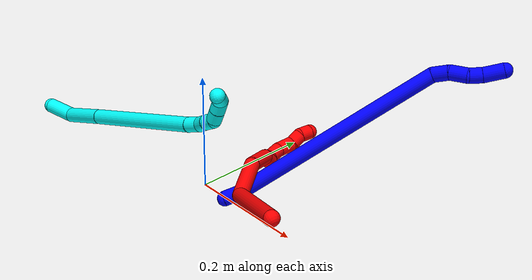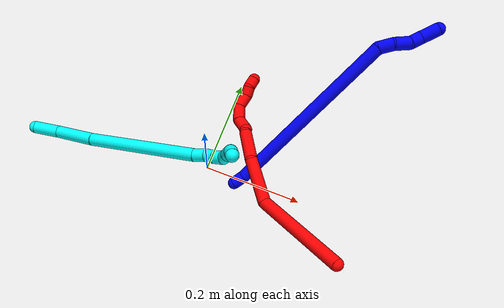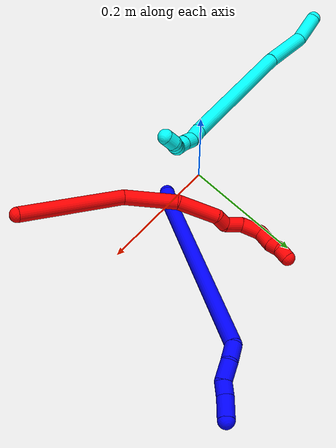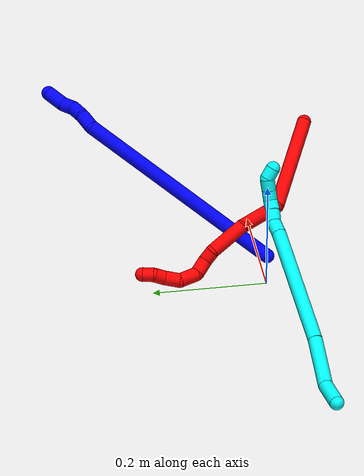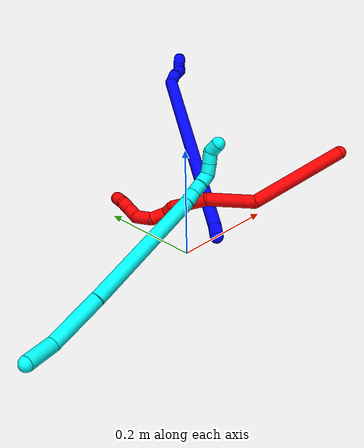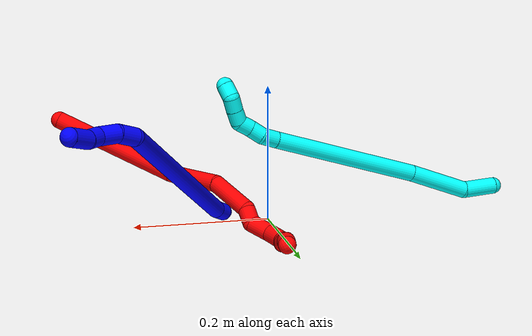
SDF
<sdf version="1.7">
 <world name="default">
  <plugin name="TubeGeneratorPlugin" filename="libtube_generator_plugin.so"/>
  <model name="photoneo_s_sensor">
   <static>1</static>
   <pose>0 0 2 1.57079 1.57079 3.14159</pose>
   <link name="link">
    <inertial><mass>0.1</mass></inertial>
    <sensor name="sensor" type="depth">
     <update_rate>30</update_rate>
     <camera>
      <horizontal_fov>1.22</horizontal_fov>
      <image><width>1920</width><height>1200</height><format>B8G8R8</format></image>
      <clip><near>0.1</near><far>4</far></clip>
      <depth_camera><output>points</output></depth_camera>
     </camera>
     <plugin name="camera_plugin" filename="libgazebo_ros_depth_camera.so">
      <baseline>0.2</baseline>
      <alwaysOn>1</alwaysOn>
      <updateRate>0.0</updateRate>
      <cameraName>camera_ir</cameraName>
      <imageTopicName>/camera/color/image_raw</imageTopicName>
      <cameraInfoTopicName>/camera/color/camera_info</cameraInfoTopicName>
      <depthImageTopicName>/camera/depth/image_raw</depthImageTopicName>
      <depthImageCameraInfoTopicName>/camera/depth/camera_info</depthImageCameraInfoTopicName>
      <pointCloudTopicName>/camera/depth/points</pointCloudTopicName>
      <frameName>fr_optical</frameName>
      <pointCloudCutoff>0.1</pointCloudCutoff>
      <pointCloudCutoffMax>2.0</pointCloudCutoffMax>
      <distortionK1>0</distortionK1>
      <distortionK2>0</distortionK2>
      <distortionK3>0</distortionK3>
      <distortionT1>0</distortionT1>
      <distortionT2>0</distortionT2>
      <CxPrime>0</CxPrime>
      <Cx>0</Cx>
      <Cy>0</Cy>
      <focalLength>0</focalLength>
      <hackBaseline>0</hackBaseline>
     </plugin>
    </sensor>
   </link>
  </model>
  <gravity>0 0 -9.8</gravity>
  <magnetic_field>6e-06 2.3e-05 -4.2e-05</magnetic_field>
  <atmosphere type="adiabatic"/>
  <physics name="default_physics" default="0" type="ode">
   <max_step_size>0.003</max_step_size>
   <real_time_factor>1</real_time_factor>
   <real_time_update_rate>1000</real_time_update_rate>
   <max_contacts>10000</max_contacts>
   <ode>
    <solver>
     <type>quick</type>
     <iters>100</iters>
     <sor>1.3</sor>
     <use_dynamic_moi_rescaling>0</use_dynamic_moi_rescaling>
    </solver>
    <constraints>
     <contact_max_correcting_vel>0</contact_max_correcting_vel>
     <contact_surface_layer>0.001</contact_surface_layer>
     <cfm>0</cfm>
     <erp>0.2</erp>
    </constraints>
   </ode>
  </physics>
  <scene><ambient>0.4 0.4 0.4 1</ambient><background>0.7 0.7 0.7 1</background><shadows>0</shadows></scene>
  <audio><device>default</device></audio>
  <spherical_coordinates>
   <surface_model>EARTH_WGS84</surface_model>
   <latitude_deg>0</latitude_deg>
   <longitude_deg>0</longitude_deg>
   <elevation>0</elevation>
   <heading_deg>0</heading_deg>
  </spherical_coordinates>
  <model name="bin">
   <static>1</static>
   <link name="bottom">
    <collision name="collision-bottom">
     <pose>0 0 -0.01 0 -0 0</pose>
     <geometry><box><size>0.8 0.6 0.02</size></box></geometry>
     <surface>
      <friction><ode><mu>100</mu><mu2>100</mu2></ode></friction>
      <contact><collide_bitmask>65535</collide_bitmask></contact>
     </surface>
    </collision>
   </link>
   <link name="west_wall">
    <collision name="collision-west_wall">
     <pose>-0.41 0 0.1 0 -0 0</pose>
     <geometry><box><size>0.02 0.6 0.2</size></box></geometry>
     <surface>
      <friction><ode><mu>100</mu><mu2>100</mu2></ode></friction>
      <contact><collide_bitmask>65535</collide_bitmask></contact>
     </surface>
    </collision>
   </link>
   <link name="east_wall">
    <collision name="collision-east_wall">
     <pose>0.41 0 0.1 0 -0 0</pose>
     <geometry><box><size>0.02 0.6 0.2</size></box></geometry>
     <surface>
      <friction><ode><mu>100</mu><mu2>100</mu2></ode></friction>
      <contact><collide_bitmask>65535</collide_bitmask></contact>
     </surface>
    </collision>
   </link>
   <link name="south_wall">
    <collision name="collision-south_wall">
     <pose>0 -0.31 0.1 0 -0 0</pose>
     <geometry><box><size>0.8 0.02 0.2</size></box></geometry>
     <surface>
      <friction><ode><mu>100</mu><mu2>100</mu2></ode></friction>
      <contact><collide_bitmask>65535</collide_bitmask></contact>
     </surface>
    </collision>
   </link>
   <link name="north_wall">
    <collision name="collision-north_wall">
     <pose>0 0.31 0.1 0 -0 0</pose>
     <geometry><box><size>0.8 0.02 0.2</size></box></geometry>
     <surface>
      <friction><ode><mu>100</mu><mu2>100</mu2></ode></friction>
      <contact><collide_bitmask>65535</collide_bitmask></contact>
     </surface>
    </collision>
   </link>
  </model>
  <model name="1">
   <static>0</static>
   <link name="1">
    <collision name="collision-cylinder-e_1_1_4">
     <pose>0.002913 0.00265 0.011387 -0.228693 0.244198 -0.028184</pose>
     <geometry><cylinder><radius>0.0125</radius><length>0.024097</length></cylinder></geometry>
     <surface>
      <friction><ode><mu>1.16</mu><mu2>1.16</mu2><slip1>0</slip1><slip2>0</slip2></ode></friction>
      <contact><ode><kp>1e+06</kp><kd>1</kd><max_vel>0</max_vel><min_depth>0.001</min_depth></ode></contact>
     </surface>
    </collision>
    <visual name="visual-cylinder-e_1_1_4">
     <pose>0.002913 0.00265 0.011387 -0.228693 0.244198 -0.028184</pose>
     <geometry><cylinder><radius>0.0125</radius><length>0.024097</length></cylinder></geometry>
     <material><ambient>0 0 1 1</ambient></material>
    </visual>
    <collision name="collision-cylinder-e_2_4_5">
     <pose>0.017857 0.039574 0.199396 -0.191664 0.066767 -0.00642</pose>
     <geometry><cylinder><radius>0.0125</radius><length>0.360639</length></cylinder></geometry>
     <surface>
      <friction><ode><mu>1.16</mu><mu2>1.16</mu2><slip1>0</slip1><slip2>0</slip2></ode></friction>
      <contact><ode><kp>1e+06</kp><kd>1</kd><max_vel>0</max_vel><min_depth>0.001</min_depth></ode></contact>
     </surface>
    </collision>
    <visual name="visual-cylinder-e_2_4_5">
     <pose>0.017857 0.039574 0.199396 -0.191664 0.066767 -0.00642</pose>
     <geometry><cylinder><radius>0.0125</radius><length>0.360639</length></cylinder></geometry>
     <material><ambient>0 0 1 1</ambient></material>
    </visual>
    <collision name="collision-cylinder-e_3_5_6">
     <pose>0.037744 0.074243 0.387864 -0.033464 0.585432 -0.010086</pose>
     <geometry><cylinder><radius>0.0125</radius><length>0.028437</length></cylinder></geometry>
     <surface>
      <friction><ode><mu>1.16</mu><mu2>1.16</mu2><slip1>0</slip1><slip2>0</slip2></ode></friction>
      <contact><ode><kp>1e+06</kp><kd>1</kd><max_vel>0</max_vel><min_depth>0.001</min_depth></ode></contact>
     </surface>
    </collision>
    <visual name="visual-cylinder-e_3_5_6">
     <pose>0.037744 0.074243 0.387864 -0.033464 0.585432 -0.010086</pose>
     <geometry><cylinder><radius>0.0125</radius><length>0.028437</length></cylinder></geometry>
     <material><ambient>0 0 1 1</ambient></material>
    </visual>
    <collision name="collision-cylinder-e_4_6_7">
     <pose>0.056567 0.077507 0.409237 -0.292281 0.833918 -0.130205</pose>
     <geometry><cylinder><radius>0.0125</radius><length>0.029617</length></cylinder></geometry>
     <surface>
      <friction><ode><mu>1.16</mu><mu2>1.16</mu2><slip1>0</slip1><slip2>0</slip2></ode></friction>
      <contact><ode><kp>1e+06</kp><kd>1</kd><max_vel>0</max_vel><min_depth>0.001</min_depth></ode></contact>
     </surface>
    </collision>
    <visual name="visual-cylinder-e_4_6_7">
     <pose>0.056567 0.077507 0.409237 -0.292281 0.833918 -0.130205</pose>
     <geometry><cylinder><radius>0.0125</radius><length>0.029617</length></cylinder></geometry>
     <material><ambient>0 0 1 1</ambient></material>
    </visual>
    <collision name="collision-cylinder-e_5_7_8">
     <pose>0.072526 0.085517 0.427168 -0.549235 0.469076 -0.13443</pose>
     <geometry><cylinder><radius>0.0125</radius><length>0.022088</length></cylinder></geometry>
     <surface>
      <friction><ode><mu>1.16</mu><mu2>1.16</mu2><slip1>0</slip1><slip2>0</slip2></ode></friction>
      <contact><ode><kp>1e+06</kp><kd>1</kd><max_vel>0</max_vel><min_depth>0.001</min_depth></ode></contact>
     </surface>
    </collision>
    <visual name="visual-cylinder-e_5_7_8">
     <pose>0.072526 0.085517 0.427168 -0.549235 0.469076 -0.13443</pose>
     <geometry><cylinder><radius>0.0125</radius><length>0.022088</length></cylinder></geometry>
     <material><ambient>0 0 1 1</ambient></material>
    </visual>
    <collision name="collision-cylinder-e_6_8_2">
     <pose>0.084695 0.094614 0.451102 -0.249323 0.420971 -0.053533</pose>
     <geometry><cylinder><radius>0.0125</radius><length>0.035122</length></cylinder></geometry>
     <surface>
      <friction><ode><mu>1.16</mu><mu2>1.16</mu2><slip1>0</slip1><slip2>0</slip2></ode></friction>
      <contact><ode><kp>1e+06</kp><kd>1</kd><max_vel>0</max_vel><min_depth>0.001</min_depth></ode></contact>
     </surface>
    </collision>
    <visual name="visual-cylinder-e_6_8_2">
     <pose>0.084695 0.094614 0.451102 -0.249323 0.420971 -0.053533</pose>
     <geometry><cylinder><radius>0.0125</radius><length>0.035122</length></cylinder></geometry>
     <material><ambient>0 0 1 1</ambient></material>
    </visual>
    <collision name="collision-sphere-2">
     <pose>0.091871 0.098569 0.466635 0 -0 0</pose>
     <geometry><sphere><radius>0.0125</radius></sphere></geometry>
     <surface>
      <friction><ode><mu>1.16</mu><mu2>1.16</mu2><slip1>0</slip1><slip2>0</slip2></ode></friction>
      <contact><ode><kp>1e+06</kp><kd>1</kd><max_vel>0</max_vel><min_depth>0.001</min_depth></ode></contact>
     </surface>
    </collision>
    <visual name="visual-sphere-2">
     <pose>0.091871 0.098569 0.466635 0 -0 0</pose>
     <geometry><sphere><radius>0.0125</radius></sphere></geometry>
     <material><ambient>0 0 1 1</ambient></material>
    </visual>
    <collision name="collision-sphere-4">
     <pose>0.005826 0.005301 0.022773 0 -0 0</pose>
     <geometry><sphere><radius>0.0125</radius></sphere></geometry>
     <surface>
      <friction><ode><mu>1.16</mu><mu2>1.16</mu2><slip1>0</slip1><slip2>0</slip2></ode></friction>
      <contact><ode><kp>1e+06</kp><kd>1</kd><max_vel>0</max_vel><min_depth>0.001</min_depth></ode></contact>
     </surface>
    </collision>
    <visual name="visual-sphere-4">
     <pose>0.005826 0.005301 0.022773 0 -0 0</pose>
     <geometry><sphere><radius>0.0125</radius></sphere></geometry>
     <material><ambient>0 0 1 1</ambient></material>
    </visual>
    <collision name="collision-sphere-1">
     <geometry><sphere><radius>0.0125</radius></sphere></geometry>
     <surface>
      <friction><ode><mu>1.16</mu><mu2>1.16</mu2><slip1>0</slip1><slip2>0</slip2></ode></friction>
      <contact><ode><kp>1e+06</kp><kd>1</kd><max_vel>0</max_vel><min_depth>0.001</min_depth></ode></contact>
     </surface>
    </collision>
    <visual name="visual-sphere-1">
     <geometry><sphere><radius>0.0125</radius></sphere></geometry>
     <material><ambient>0 0 1 1</ambient></material>
    </visual>
    <collision name="collision-sphere-8">
     <pose>0.077519 0.090659 0.43557 0 -0 0</pose>
     <geometry><sphere><radius>0.0125</radius></sphere></geometry>
     <surface>
      <friction><ode><mu>1.16</mu><mu2>1.16</mu2><slip1>0</slip1><slip2>0</slip2></ode></friction>
      <contact><ode><kp>1e+06</kp><kd>1</kd><max_vel>0</max_vel><min_depth>0.001</min_depth></ode></contact>
     </surface>
    </collision>
    <visual name="visual-sphere-8">
     <pose>0.077519 0.090659 0.43557 0 -0 0</pose>
     <geometry><sphere><radius>0.0125</radius></sphere></geometry>
     <material><ambient>0 0 1 1</ambient></material>
    </visual>
    <collision name="collision-sphere-5">
     <pose>0.029887 0.073847 0.37602 0 -0 0</pose>
     <geometry><sphere><radius>0.0125</radius></sphere></geometry>
     <surface>
      <friction><ode><mu>1.16</mu><mu2>1.16</mu2><slip1>0</slip1><slip2>0</slip2></ode></friction>
      <contact><ode><kp>1e+06</kp><kd>1</kd><max_vel>0</max_vel><min_depth>0.001</min_depth></ode></contact>
     </surface>
    </collision>
    <visual name="visual-sphere-5">
     <pose>0.029887 0.073847 0.37602 0 -0 0</pose>
     <geometry><sphere><radius>0.0125</radius></sphere></geometry>
     <material><ambient>0 0 1 1</ambient></material>
    </visual>
    <collision name="collision-sphere-6">
     <pose>0.0456 0.07464 0.399708 0 -0 0</pose>
     <geometry><sphere><radius>0.0125</radius></sphere></geometry>
     <surface>
      <friction><ode><mu>1.16</mu><mu2>1.16</mu2><slip1>0</slip1><slip2>0</slip2></ode></friction>
      <contact><ode><kp>1e+06</kp><kd>1</kd><max_vel>0</max_vel><min_depth>0.001</min_depth></ode></contact>
     </surface>
    </collision>
    <visual name="visual-sphere-6">
     <pose>0.0456 0.07464 0.399708 0 -0 0</pose>
     <geometry><sphere><radius>0.0125</radius></sphere></geometry>
     <material><ambient>0 0 1 1</ambient></material>
    </visual>
    <collision name="collision-sphere-7">
     <pose>0.067534 0.080374 0.418766 0 -0 0</pose>
     <geometry><sphere><radius>0.0125</radius></sphere></geometry>
     <surface>
      <friction><ode><mu>1.16</mu><mu2>1.16</mu2><slip1>0</slip1><slip2>0</slip2></ode></friction>
      <contact><ode><kp>1e+06</kp><kd>1</kd><max_vel>0</max_vel><min_depth>0.001</min_depth></ode></contact>
     </surface>
    </collision>
    <visual name="visual-sphere-7">
     <pose>0.067534 0.080374 0.418766 0 -0 0</pose>
     <geometry><sphere><radius>0.0125</radius></sphere></geometry>
     <material><ambient>0 0 1 1</ambient></material>
    </visual>
    <inertial>
     <pose>0.027671 0.047909 0.241227 0 -0 0</pose>
     <mass>0.5</mass>
     <inertia>
      <ixx>0.003908</ixx>
      <ixy>0</ixy>
      <ixz>0</ixz>
      <iyy>0.003848</iyy>
      <iyz>0</iyz>
      <izz>-0.000981</izz>
     </inertia>
    </inertial>
   </link>
   <pose>0.064957 -0.013134 0.011497 -0.768861 0.396429 -0.190919</pose>
  </model>
  <model name="2">
   <static>0</static>
   <link name="2">
    <collision name="collision-cylinder-e_1_1_4">
     <pose>-0.019199 0.071219 -0.056441 -2.24095 -0.208215 0.425701</pose>
     <geometry><cylinder><radius>0.0125</radius><length>0.185756</length></cylinder></geometry>
     <surface>
      <friction><ode><mu>1.16</mu><mu2>1.16</mu2><slip1>0</slip1><slip2>0</slip2></ode></friction>
      <contact><ode><kp>1e+06</kp><kd>1</kd><max_vel>0</max_vel><min_depth>0.001</min_depth></ode></contact>
     </surface>
    </collision>
    <visual name="visual-cylinder-e_1_1_4">
     <pose>-0.019199 0.071219 -0.056441 -2.24095 -0.208215 0.425701</pose>
     <geometry><cylinder><radius>0.0125</radius><length>0.185756</length></cylinder></geometry>
     <material><ambient>1 0 0 1</ambient></material>
    </visual>
    <collision name="collision-cylinder-e_2_4_5">
     <pose>-0.067621 0.158936 -0.14266 -2.63564 -0.709355 1.92275</pose>
     <geometry><cylinder><radius>0.0125</radius><length>0.089732</length></cylinder></geometry>
     <surface>
      <friction><ode><mu>1.16</mu><mu2>1.16</mu2><slip1>0</slip1><slip2>0</slip2></ode></friction>
      <contact><ode><kp>1e+06</kp><kd>1</kd><max_vel>0</max_vel><min_depth>0.001</min_depth></ode></contact>
     </surface>
    </collision>
    <visual name="visual-cylinder-e_2_4_5">
     <pose>-0.067621 0.158936 -0.14266 -2.63564 -0.709355 1.92275</pose>
     <geometry><cylinder><radius>0.0125</radius><length>0.089732</length></cylinder></geometry>
     <material><ambient>1 0 0 1</ambient></material>
    </visual>
    <collision name="collision-cylinder-e_3_5_6">
     <pose>-0.120834 0.197044 -0.185727 -2.12215 -0.757481 1.23735</pose>
     <geometry><cylinder><radius>0.0125</radius><length>0.069829</length></cylinder></geometry>
     <surface>
      <friction><ode><mu>1.16</mu><mu2>1.16</mu2><slip1>0</slip1><slip2>0</slip2></ode></friction>
      <contact><ode><kp>1e+06</kp><kd>1</kd><max_vel>0</max_vel><min_depth>0.001</min_depth></ode></contact>
     </surface>
    </collision>
    <visual name="visual-cylinder-e_3_5_6">
     <pose>-0.120834 0.197044 -0.185727 -2.12215 -0.757481 1.23735</pose>
     <geometry><cylinder><radius>0.0125</radius><length>0.069829</length></cylinder></geometry>
     <material><ambient>1 0 0 1</ambient></material>
    </visual>
    <collision name="collision-cylinder-e_4_6_7">
     <pose>-0.15118 0.227848 -0.198147 -1.47659 -0.60274 0.551303</pose>
     <geometry><cylinder><radius>0.0125</radius><length>0.022423</length></cylinder></geometry>
     <surface>
      <friction><ode><mu>1.16</mu><mu2>1.16</mu2><slip1>0</slip1><slip2>0</slip2></ode></friction>
      <contact><ode><kp>1e+06</kp><kd>1</kd><max_vel>0</max_vel><min_depth>0.001</min_depth></ode></contact>
     </surface>
    </collision>
    <visual name="visual-cylinder-e_4_6_7">
     <pose>-0.15118 0.227848 -0.198147 -1.47659 -0.60274 0.551303</pose>
     <geometry><cylinder><radius>0.0125</radius><length>0.022423</length></cylinder></geometry>
     <material><ambient>1 0 0 1</ambient></material>
    </visual>
    <collision name="collision-cylinder-e_5_7_8">
     <pose>-0.163878 0.247827 -0.205983 -2.24987 -0.429179 0.855649</pose>
     <geometry><cylinder><radius>0.0125</radius><length>0.030484</length></cylinder></geometry>
     <surface>
      <friction><ode><mu>1.16</mu><mu2>1.16</mu2><slip1>0</slip1><slip2>0</slip2></ode></friction>
      <contact><ode><kp>1e+06</kp><kd>1</kd><max_vel>0</max_vel><min_depth>0.001</min_depth></ode></contact>
     </surface>
    </collision>
    <visual name="visual-cylinder-e_5_7_8">
     <pose>-0.163878 0.247827 -0.205983 -2.24987 -0.429179 0.855649</pose>
     <geometry><cylinder><radius>0.0125</radius><length>0.030484</length></cylinder></geometry>
     <material><ambient>1 0 0 1</ambient></material>
    </visual>
    <collision name="collision-cylinder-e_6_8_9">
     <pose>-0.184325 0.264346 -0.22178 -2.46168 -0.996832 1.98903</pose>
     <geometry><cylinder><radius>0.0125</radius><length>0.033592</length></cylinder></geometry>
     <surface>
      <friction><ode><mu>1.16</mu><mu2>1.16</mu2><slip1>0</slip1><slip2>0</slip2></ode></friction>
      <contact><ode><kp>1e+06</kp><kd>1</kd><max_vel>0</max_vel><min_depth>0.001</min_depth></ode></contact>
     </surface>
    </collision>
    <visual name="visual-cylinder-e_6_8_9">
     <pose>-0.184325 0.264346 -0.22178 -2.46168 -0.996832 1.98903</pose>
     <geometry><cylinder><radius>0.0125</radius><length>0.033592</length></cylinder></geometry>
     <material><ambient>1 0 0 1</ambient></material>
    </visual>
    <collision name="collision-cylinder-e_7_9_10">
     <pose>-0.21231 0.268362 -0.229721 2.02976 -1.43358 -1.90286</pose>
     <geometry><cylinder><radius>0.0125</radius><length>0.028024</length></cylinder></geometry>
     <surface>
      <friction><ode><mu>1.16</mu><mu2>1.16</mu2><slip1>0</slip1><slip2>0</slip2></ode></friction>
      <contact><ode><kp>1e+06</kp><kd>1</kd><max_vel>0</max_vel><min_depth>0.001</min_depth></ode></contact>
     </surface>
    </collision>
    <visual name="visual-cylinder-e_7_9_10">
     <pose>-0.21231 0.268362 -0.229721 2.02976 -1.43358 -1.90286</pose>
     <geometry><cylinder><radius>0.0125</radius><length>0.028024</length></cylinder></geometry>
     <material><ambient>1 0 0 1</ambient></material>
    </visual>
    <collision name="collision-cylinder-e_8_10_11">
     <pose>-0.235118 0.264042 -0.23443 2.54869 -1.09019 -2.20833</pose>
     <geometry><cylinder><radius>0.0125</radius><length>0.020136</length></cylinder></geometry>
     <surface>
      <friction><ode><mu>1.16</mu><mu2>1.16</mu2><slip1>0</slip1><slip2>0</slip2></ode></friction>
      <contact><ode><kp>1e+06</kp><kd>1</kd><max_vel>0</max_vel><min_depth>0.001</min_depth></ode></contact>
     </surface>
    </collision>
    <visual name="visual-cylinder-e_8_10_11">
     <pose>-0.235118 0.264042 -0.23443 2.54869 -1.09019 -2.20833</pose>
     <geometry><cylinder><radius>0.0125</radius><length>0.020136</length></cylinder></geometry>
     <material><ambient>1 0 0 1</ambient></material>
    </visual>
    <collision name="collision-cylinder-e_9_11_2">
     <pose>-0.254042 0.261717 -0.238775 -2.62601 -1.51506 2.59784</pose>
     <geometry><cylinder><radius>0.0125</radius><length>0.020024</length></cylinder></geometry>
     <surface>
      <friction><ode><mu>1.16</mu><mu2>1.16</mu2><slip1>0</slip1><slip2>0</slip2></ode></friction>
      <contact><ode><kp>1e+06</kp><kd>1</kd><max_vel>0</max_vel><min_depth>0.001</min_depth></ode></contact>
     </surface>
    </collision>
    <visual name="visual-cylinder-e_9_11_2">
     <pose>-0.254042 0.261717 -0.238775 -2.62601 -1.51506 2.59784</pose>
     <geometry><cylinder><radius>0.0125</radius><length>0.020024</length></cylinder></geometry>
     <material><ambient>1 0 0 1</ambient></material>
    </visual>
    <collision name="collision-sphere-2">
     <pose>-0.264038 0.261992 -0.23926 0 -0 0</pose>
     <geometry><sphere><radius>0.0125</radius></sphere></geometry>
     <surface>
      <friction><ode><mu>1.16</mu><mu2>1.16</mu2><slip1>0</slip1><slip2>0</slip2></ode></friction>
      <contact><ode><kp>1e+06</kp><kd>1</kd><max_vel>0</max_vel><min_depth>0.001</min_depth></ode></contact>
     </surface>
    </collision>
    <visual name="visual-sphere-2">
     <pose>-0.264038 0.261992 -0.23926 0 -0 0</pose>
     <geometry><sphere><radius>0.0125</radius></sphere></geometry>
     <material><ambient>1 0 0 1</ambient></material>
    </visual>
    <collision name="collision-sphere-11">
     <pose>-0.244045 0.261442 -0.23829 0 -0 0</pose>
     <geometry><sphere><radius>0.0125</radius></sphere></geometry>
     <surface>
      <friction><ode><mu>1.16</mu><mu2>1.16</mu2><slip1>0</slip1><slip2>0</slip2></ode></friction>
      <contact><ode><kp>1e+06</kp><kd>1</kd><max_vel>0</max_vel><min_depth>0.001</min_depth></ode></contact>
     </surface>
    </collision>
    <visual name="visual-sphere-11">
     <pose>-0.244045 0.261442 -0.23829 0 -0 0</pose>
     <geometry><sphere><radius>0.0125</radius></sphere></geometry>
     <material><ambient>1 0 0 1</ambient></material>
    </visual>
    <collision name="collision-sphere-10">
     <pose>-0.226191 0.266643 -0.23057 0 -0 0</pose>
     <geometry><sphere><radius>0.0125</radius></sphere></geometry>
     <surface>
      <friction><ode><mu>1.16</mu><mu2>1.16</mu2><slip1>0</slip1><slip2>0</slip2></ode></friction>
      <contact><ode><kp>1e+06</kp><kd>1</kd><max_vel>0</max_vel><min_depth>0.001</min_depth></ode></contact>
     </surface>
    </collision>
    <visual name="visual-sphere-10">
     <pose>-0.226191 0.266643 -0.23057 0 -0 0</pose>
     <geometry><sphere><radius>0.0125</radius></sphere></geometry>
     <material><ambient>1 0 0 1</ambient></material>
    </visual>
    <collision name="collision-sphere-9">
     <pose>-0.19843 0.27008 -0.228871 0 -0 0</pose>
     <geometry><sphere><radius>0.0125</radius></sphere></geometry>
     <surface>
      <friction><ode><mu>1.16</mu><mu2>1.16</mu2><slip1>0</slip1><slip2>0</slip2></ode></friction>
      <contact><ode><kp>1e+06</kp><kd>1</kd><max_vel>0</max_vel><min_depth>0.001</min_depth></ode></contact>
     </surface>
    </collision>
    <visual name="visual-sphere-9">
     <pose>-0.19843 0.27008 -0.228871 0 -0 0</pose>
     <geometry><sphere><radius>0.0125</radius></sphere></geometry>
     <material><ambient>1 0 0 1</ambient></material>
    </visual>
    <collision name="collision-sphere-4">
     <pose>-0.038398 0.142437 -0.112882 0 -0 0</pose>
     <geometry><sphere><radius>0.0125</radius></sphere></geometry>
     <surface>
      <friction><ode><mu>1.16</mu><mu2>1.16</mu2><slip1>0</slip1><slip2>0</slip2></ode></friction>
      <contact><ode><kp>1e+06</kp><kd>1</kd><max_vel>0</max_vel><min_depth>0.001</min_depth></ode></contact>
     </surface>
    </collision>
    <visual name="visual-sphere-4">
     <pose>-0.038398 0.142437 -0.112882 0 -0 0</pose>
     <geometry><sphere><radius>0.0125</radius></sphere></geometry>
     <material><ambient>1 0 0 1</ambient></material>
    </visual>
    <collision name="collision-sphere-1">
     <geometry><sphere><radius>0.0125</radius></sphere></geometry>
     <surface>
      <friction><ode><mu>1.16</mu><mu2>1.16</mu2><slip1>0</slip1><slip2>0</slip2></ode></friction>
      <contact><ode><kp>1e+06</kp><kd>1</kd><max_vel>0</max_vel><min_depth>0.001</min_depth></ode></contact>
     </surface>
    </collision>
    <visual name="visual-sphere-1">
     <geometry><sphere><radius>0.0125</radius></sphere></geometry>
     <material><ambient>1 0 0 1</ambient></material>
    </visual>
    <collision name="collision-sphere-8">
     <pose>-0.170221 0.258612 -0.214688 0 -0 0</pose>
     <geometry><sphere><radius>0.0125</radius></sphere></geometry>
     <surface>
      <friction><ode><mu>1.16</mu><mu2>1.16</mu2><slip1>0</slip1><slip2>0</slip2></ode></friction>
      <contact><ode><kp>1e+06</kp><kd>1</kd><max_vel>0</max_vel><min_depth>0.001</min_depth></ode></contact>
     </surface>
    </collision>
    <visual name="visual-sphere-8">
     <pose>-0.170221 0.258612 -0.214688 0 -0 0</pose>
     <geometry><sphere><radius>0.0125</radius></sphere></geometry>
     <material><ambient>1 0 0 1</ambient></material>
    </visual>
    <collision name="collision-sphere-5">
     <pose>-0.096845 0.175435 -0.172439 0 -0 0</pose>
     <geometry><sphere><radius>0.0125</radius></sphere></geometry>
     <surface>
      <friction><ode><mu>1.16</mu><mu2>1.16</mu2><slip1>0</slip1><slip2>0</slip2></ode></friction>
      <contact><ode><kp>1e+06</kp><kd>1</kd><max_vel>0</max_vel><min_depth>0.001</min_depth></ode></contact>
     </surface>
    </collision>
    <visual name="visual-sphere-5">
     <pose>-0.096845 0.175435 -0.172439 0 -0 0</pose>
     <geometry><sphere><radius>0.0125</radius></sphere></geometry>
     <material><ambient>1 0 0 1</ambient></material>
    </visual>
    <collision name="collision-sphere-6">
     <pose>-0.144824 0.218653 -0.199016 0 -0 0</pose>
     <geometry><sphere><radius>0.0125</radius></sphere></geometry>
     <surface>
      <friction><ode><mu>1.16</mu><mu2>1.16</mu2><slip1>0</slip1><slip2>0</slip2></ode></friction>
      <contact><ode><kp>1e+06</kp><kd>1</kd><max_vel>0</max_vel><min_depth>0.001</min_depth></ode></contact>
     </surface>
    </collision>
    <visual name="visual-sphere-6">
     <pose>-0.144824 0.218653 -0.199016 0 -0 0</pose>
     <geometry><sphere><radius>0.0125</radius></sphere></geometry>
     <material><ambient>1 0 0 1</ambient></material>
    </visual>
    <collision name="collision-sphere-7">
     <pose>-0.157536 0.237043 -0.197278 0 -0 0</pose>
     <geometry><sphere><radius>0.0125</radius></sphere></geometry>
     <surface>
      <friction><ode><mu>1.16</mu><mu2>1.16</mu2><slip1>0</slip1><slip2>0</slip2></ode></friction>
      <contact><ode><kp>1e+06</kp><kd>1</kd><max_vel>0</max_vel><min_depth>0.001</min_depth></ode></contact>
     </surface>
    </collision>
    <visual name="visual-sphere-7">
     <pose>-0.157536 0.237043 -0.197278 0 -0 0</pose>
     <geometry><sphere><radius>0.0125</radius></sphere></geometry>
     <material><ambient>1 0 0 1</ambient></material>
    </visual>
    <inertial>
     <pose>-0.096841 0.161744 -0.140733 0 -0 0</pose>
     <mass>0.5</mass>
     <inertia>
      <ixx>0.000744</ixx>
      <ixy>0</ixy>
      <ixz>0</ixz>
      <iyy>0.0001</iyy>
      <iyz>0</iyz>
      <izz>-0.000295</izz>
     </inertia>
    </inertial>
   </link>
   <pose>0.290887 -0.117537 0.138903 -2.05644 0.02703 -1.78761</pose>
  </model>
  <model name="3">
   <static>0</static>
   <link name="3">
    <collision name="collision-cylinder-e_1_1_4">
     <pose>-0.00398 -0.01332 -0.021574 2.58848 -0.155687 -0.536391</pose>
     <geometry><cylinder><radius>0.0125</radius><length>0.05133</length></cylinder></geometry>
     <surface>
      <friction><ode><mu>1.16</mu><mu2>1.16</mu2><slip1>0</slip1><slip2>0</slip2></ode></friction>
      <contact><ode><kp>1e+06</kp><kd>1</kd><max_vel>0</max_vel><min_depth>0.001</min_depth></ode></contact>
     </surface>
    </collision>
    <visual name="visual-cylinder-e_1_1_4">
     <pose>-0.00398 -0.01332 -0.021574 2.58848 -0.155687 -0.536391</pose>
     <geometry><cylinder><radius>0.0125</radius><length>0.05133</length></cylinder></geometry>
     <material><ambient>0.003922 1 0.996078 1</ambient></material>
    </visual>
    <collision name="collision-cylinder-e_2_4_5">
     <pose>-0.003068 -0.037037 -0.087523 2.91143 0.106905 0.867</pose>
     <geometry><cylinder><radius>0.0125</radius><length>0.091677</length></cylinder></geometry>
     <surface>
      <friction><ode><mu>1.16</mu><mu2>1.16</mu2><slip1>0</slip1><slip2>0</slip2></ode></friction>
      <contact><ode><kp>1e+06</kp><kd>1</kd><max_vel>0</max_vel><min_depth>0.001</min_depth></ode></contact>
     </surface>
    </collision>
    <visual name="visual-cylinder-e_2_4_5">
     <pose>-0.003068 -0.037037 -0.087523 2.91143 0.106905 0.867</pose>
     <geometry><cylinder><radius>0.0125</radius><length>0.091677</length></cylinder></geometry>
     <material><ambient>0.003922 1 0.996078 1</ambient></material>
    </visual>
    <collision name="collision-cylinder-e_3_5_6">
     <pose>0.003557 -0.076386 -0.243321 2.88739 0.015061 0.117723</pose>
     <geometry><cylinder><radius>0.0125</radius><length>0.230271</length></cylinder></geometry>
     <surface>
      <friction><ode><mu>1.16</mu><mu2>1.16</mu2><slip1>0</slip1><slip2>0</slip2></ode></friction>
      <contact><ode><kp>1e+06</kp><kd>1</kd><max_vel>0</max_vel><min_depth>0.001</min_depth></ode></contact>
     </surface>
    </collision>
    <visual name="visual-cylinder-e_3_5_6">
     <pose>0.003557 -0.076386 -0.243321 2.88739 0.015061 0.117723</pose>
     <geometry><cylinder><radius>0.0125</radius><length>0.230271</length></cylinder></geometry>
     <material><ambient>0.003922 1 0.996078 1</ambient></material>
    </visual>
    <collision name="collision-cylinder-e_4_6_7">
     <pose>0.004284 -0.107555 -0.366872 2.96063 -0.081473 -0.844436</pose>
     <geometry><cylinder><radius>0.0125</radius><length>0.024742</length></cylinder></geometry>
     <surface>
      <friction><ode><mu>1.16</mu><mu2>1.16</mu2><slip1>0</slip1><slip2>0</slip2></ode></friction>
      <contact><ode><kp>1e+06</kp><kd>1</kd><max_vel>0</max_vel><min_depth>0.001</min_depth></ode></contact>
     </surface>
    </collision>
    <visual name="visual-cylinder-e_4_6_7">
     <pose>0.004284 -0.107555 -0.366872 2.96063 -0.081473 -0.844436</pose>
     <geometry><cylinder><radius>0.0125</radius><length>0.024742</length></cylinder></geometry>
     <material><ambient>0.003922 1 0.996078 1</ambient></material>
    </visual>
    <collision name="collision-cylinder-e_5_7_8">
     <pose>0.005942 -0.109956 -0.389255 3.12387 0.254243 3.00313</pose>
     <geometry><cylinder><radius>0.0125</radius><length>0.021192</length></cylinder></geometry>
     <surface>
      <friction><ode><mu>1.16</mu><mu2>1.16</mu2><slip1>0</slip1><slip2>0</slip2></ode></friction>
      <contact><ode><kp>1e+06</kp><kd>1</kd><max_vel>0</max_vel><min_depth>0.001</min_depth></ode></contact>
     </surface>
    </collision>
    <visual name="visual-cylinder-e_5_7_8">
     <pose>0.005942 -0.109956 -0.389255 3.12387 0.254243 3.00313</pose>
     <geometry><cylinder><radius>0.0125</radius><length>0.021192</length></cylinder></geometry>
     <material><ambient>0.003922 1 0.996078 1</ambient></material>
    </visual>
    <collision name="collision-cylinder-e_6_8_9">
     <pose>0.009802 -0.110627 -0.409452 3.09249 0.119431 2.36209</pose>
     <geometry><cylinder><radius>0.0125</radius><length>0.020054</length></cylinder></geometry>
     <surface>
      <friction><ode><mu>1.16</mu><mu2>1.16</mu2><slip1>0</slip1><slip2>0</slip2></ode></friction>
      <contact><ode><kp>1e+06</kp><kd>1</kd><max_vel>0</max_vel><min_depth>0.001</min_depth></ode></contact>
     </surface>
    </collision>
    <visual name="visual-cylinder-e_6_8_9">
     <pose>0.009802 -0.110627 -0.409452 3.09249 0.119431 2.36209</pose>
     <geometry><cylinder><radius>0.0125</radius><length>0.020054</length></cylinder></geometry>
     <material><ambient>0.003922 1 0.996078 1</ambient></material>
    </visual>
    <collision name="collision-cylinder-e_7_9_10">
     <pose>0.013048 -0.105149 -0.427261 -2.4926 0.204864 -0.593125</pose>
     <geometry><cylinder><radius>0.0125</radius><length>0.020166</length></cylinder></geometry>
     <surface>
      <friction><ode><mu>1.16</mu><mu2>1.16</mu2><slip1>0</slip1><slip2>0</slip2></ode></friction>
      <contact><ode><kp>1e+06</kp><kd>1</kd><max_vel>0</max_vel><min_depth>0.001</min_depth></ode></contact>
     </surface>
    </collision>
    <visual name="visual-cylinder-e_7_9_10">
     <pose>0.013048 -0.105149 -0.427261 -2.4926 0.204864 -0.593125</pose>
     <geometry><cylinder><radius>0.0125</radius><length>0.020166</length></cylinder></geometry>
     <material><ambient>0.003922 1 0.996078 1</ambient></material>
    </visual>
    <collision name="collision-cylinder-e_8_10_11">
     <pose>0.017048 -0.09266 -0.442691 -2.4301 0.192717 -0.509007</pose>
     <geometry><cylinder><radius>0.0125</radius><length>0.020353</length></cylinder></geometry>
     <surface>
      <friction><ode><mu>1.16</mu><mu2>1.16</mu2><slip1>0</slip1><slip2>0</slip2></ode></friction>
      <contact><ode><kp>1e+06</kp><kd>1</kd><max_vel>0</max_vel><min_depth>0.001</min_depth></ode></contact>
     </surface>
    </collision>
    <visual name="visual-cylinder-e_8_10_11">
     <pose>0.017048 -0.09266 -0.442691 -2.4301 0.192717 -0.509007</pose>
     <geometry><cylinder><radius>0.0125</radius><length>0.020353</length></cylinder></geometry>
     <material><ambient>0.003922 1 0.996078 1</ambient></material>
    </visual>
    <collision name="collision-cylinder-e_9_11_2">
     <pose>0.026774 -0.083086 -0.455945 -2.64921 0.877986 -2.15882</pose>
     <geometry><cylinder><radius>0.0125</radius><length>0.020214</length></cylinder></geometry>
     <surface>
      <friction><ode><mu>1.16</mu><mu2>1.16</mu2><slip1>0</slip1><slip2>0</slip2></ode></friction>
      <contact><ode><kp>1e+06</kp><kd>1</kd><max_vel>0</max_vel><min_depth>0.001</min_depth></ode></contact>
     </surface>
    </collision>
    <visual name="visual-cylinder-e_9_11_2">
     <pose>0.026774 -0.083086 -0.455945 -2.64921 0.877986 -2.15882</pose>
     <geometry><cylinder><radius>0.0125</radius><length>0.020214</length></cylinder></geometry>
     <material><ambient>0.003922 1 0.996078 1</ambient></material>
    </visual>
    <collision name="collision-sphere-2">
     <pose>0.034551 -0.080035 -0.461633 0 -0 0</pose>
     <geometry><sphere><radius>0.0125</radius></sphere></geometry>
     <surface>
      <friction><ode><mu>1.16</mu><mu2>1.16</mu2><slip1>0</slip1><slip2>0</slip2></ode></friction>
      <contact><ode><kp>1e+06</kp><kd>1</kd><max_vel>0</max_vel><min_depth>0.001</min_depth></ode></contact>
     </surface>
    </collision>
    <visual name="visual-sphere-2">
     <pose>0.034551 -0.080035 -0.461633 0 -0 0</pose>
     <geometry><sphere><radius>0.0125</radius></sphere></geometry>
     <material><ambient>0.003922 1 0.996078 1</ambient></material>
    </visual>
    <collision name="collision-sphere-11">
     <pose>0.018997 -0.086138 -0.450256 0 -0 0</pose>
     <geometry><sphere><radius>0.0125</radius></sphere></geometry>
     <surface>
      <friction><ode><mu>1.16</mu><mu2>1.16</mu2><slip1>0</slip1><slip2>0</slip2></ode></friction>
      <contact><ode><kp>1e+06</kp><kd>1</kd><max_vel>0</max_vel><min_depth>0.001</min_depth></ode></contact>
     </surface>
    </collision>
    <visual name="visual-sphere-11">
     <pose>0.018997 -0.086138 -0.450256 0 -0 0</pose>
     <geometry><sphere><radius>0.0125</radius></sphere></geometry>
     <material><ambient>0.003922 1 0.996078 1</ambient></material>
    </visual>
    <collision name="collision-sphere-10">
     <pose>0.015099 -0.099182 -0.435126 0 -0 0</pose>
     <geometry><sphere><radius>0.0125</radius></sphere></geometry>
     <surface>
      <friction><ode><mu>1.16</mu><mu2>1.16</mu2><slip1>0</slip1><slip2>0</slip2></ode></friction>
      <contact><ode><kp>1e+06</kp><kd>1</kd><max_vel>0</max_vel><min_depth>0.001</min_depth></ode></contact>
     </surface>
    </collision>
    <visual name="visual-sphere-10">
     <pose>0.015099 -0.099182 -0.435126 0 -0 0</pose>
     <geometry><sphere><radius>0.0125</radius></sphere></geometry>
     <material><ambient>0.003922 1 0.996078 1</ambient></material>
    </visual>
    <collision name="collision-sphere-9">
     <pose>0.010997 -0.111115 -0.419396 0 -0 0</pose>
     <geometry><sphere><radius>0.0125</radius></sphere></geometry>
     <surface>
      <friction><ode><mu>1.16</mu><mu2>1.16</mu2><slip1>0</slip1><slip2>0</slip2></ode></friction>
      <contact><ode><kp>1e+06</kp><kd>1</kd><max_vel>0</max_vel><min_depth>0.001</min_depth></ode></contact>
     </surface>
    </collision>
    <visual name="visual-sphere-9">
     <pose>0.010997 -0.111115 -0.419396 0 -0 0</pose>
     <geometry><sphere><radius>0.0125</radius></sphere></geometry>
     <material><ambient>0.003922 1 0.996078 1</ambient></material>
    </visual>
    <collision name="collision-sphere-4">
     <pose>-0.007959 -0.02664 -0.043148 0 -0 0</pose>
     <geometry><sphere><radius>0.0125</radius></sphere></geometry>
     <surface>
      <friction><ode><mu>1.16</mu><mu2>1.16</mu2><slip1>0</slip1><slip2>0</slip2></ode></friction>
      <contact><ode><kp>1e+06</kp><kd>1</kd><max_vel>0</max_vel><min_depth>0.001</min_depth></ode></contact>
     </surface>
    </collision>
    <visual name="visual-sphere-4">
     <pose>-0.007959 -0.02664 -0.043148 0 -0 0</pose>
     <geometry><sphere><radius>0.0125</radius></sphere></geometry>
     <material><ambient>0.003922 1 0.996078 1</ambient></material>
    </visual>
    <collision name="collision-sphere-1">
     <geometry><sphere><radius>0.0125</radius></sphere></geometry>
     <surface>
      <friction><ode><mu>1.16</mu><mu2>1.16</mu2><slip1>0</slip1><slip2>0</slip2></ode></friction>
      <contact><ode><kp>1e+06</kp><kd>1</kd><max_vel>0</max_vel><min_depth>0.001</min_depth></ode></contact>
     </surface>
    </collision>
    <visual name="visual-sphere-1">
     <geometry><sphere><radius>0.0125</radius></sphere></geometry>
     <material><ambient>0.003922 1 0.996078 1</ambient></material>
    </visual>
    <collision name="collision-sphere-8">
     <pose>0.008607 -0.110138 -0.399509 0 -0 0</pose>
     <geometry><sphere><radius>0.0125</radius></sphere></geometry>
     <surface>
      <friction><ode><mu>1.16</mu><mu2>1.16</mu2><slip1>0</slip1><slip2>0</slip2></ode></friction>
      <contact><ode><kp>1e+06</kp><kd>1</kd><max_vel>0</max_vel><min_depth>0.001</min_depth></ode></contact>
     </surface>
    </collision>
    <visual name="visual-sphere-8">
     <pose>0.008607 -0.110138 -0.399509 0 -0 0</pose>
     <geometry><sphere><radius>0.0125</radius></sphere></geometry>
     <material><ambient>0.003922 1 0.996078 1</ambient></material>
    </visual>
    <collision name="collision-sphere-5">
     <pose>0.001823 -0.047435 -0.131898 0 -0 0</pose>
     <geometry><sphere><radius>0.0125</radius></sphere></geometry>
     <surface>
      <friction><ode><mu>1.16</mu><mu2>1.16</mu2><slip1>0</slip1><slip2>0</slip2></ode></friction>
      <contact><ode><kp>1e+06</kp><kd>1</kd><max_vel>0</max_vel><min_depth>0.001</min_depth></ode></contact>
     </surface>
    </collision>
    <visual name="visual-sphere-5">
     <pose>0.001823 -0.047435 -0.131898 0 -0 0</pose>
     <geometry><sphere><radius>0.0125</radius></sphere></geometry>
     <material><ambient>0.003922 1 0.996078 1</ambient></material>
    </visual>
    <collision name="collision-sphere-6">
     <pose>0.005291 -0.105336 -0.354744 0 -0 0</pose>
     <geometry><sphere><radius>0.0125</radius></sphere></geometry>
     <surface>
      <friction><ode><mu>1.16</mu><mu2>1.16</mu2><slip1>0</slip1><slip2>0</slip2></ode></friction>
      <contact><ode><kp>1e+06</kp><kd>1</kd><max_vel>0</max_vel><min_depth>0.001</min_depth></ode></contact>
     </surface>
    </collision>
    <visual name="visual-sphere-6">
     <pose>0.005291 -0.105336 -0.354744 0 -0 0</pose>
     <geometry><sphere><radius>0.0125</radius></sphere></geometry>
     <material><ambient>0.003922 1 0.996078 1</ambient></material>
    </visual>
    <collision name="collision-sphere-7">
     <pose>0.003277 -0.109774 -0.379001 0 -0 0</pose>
     <geometry><sphere><radius>0.0125</radius></sphere></geometry>
     <surface>
      <friction><ode><mu>1.16</mu><mu2>1.16</mu2><slip1>0</slip1><slip2>0</slip2></ode></friction>
      <contact><ode><kp>1e+06</kp><kd>1</kd><max_vel>0</max_vel><min_depth>0.001</min_depth></ode></contact>
     </surface>
    </collision>
    <visual name="visual-sphere-7">
     <pose>0.003277 -0.109774 -0.379001 0 -0 0</pose>
     <geometry><sphere><radius>0.0125</radius></sphere></geometry>
     <material><ambient>0.003922 1 0.996078 1</ambient></material>
    </visual>
    <inertial>
     <pose>0.003827 -0.069129 -0.235083 0 -0 0</pose>
     <mass>0.5</mass>
     <inertia><ixx>0.00124</ixx><ixy>0</ixy><ixz>0</ixz><iyy>-0.00088</iyy><iyz>0</iyz><izz>0.00022</izz></inertia>
    </inertial>
   </link>
   <pose>-0.370763 -0.054127 0.013772 2.14697 -0.315957 -1.54669</pose>
  </model>
 </world>
</sdf>
